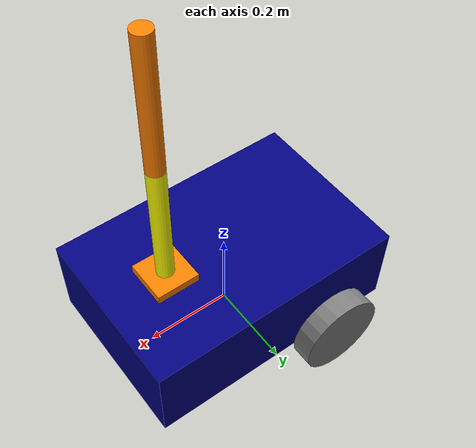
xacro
<?xml version="1.0"?>
<robot name="my_robot" xmlns:xacro="http://www.ros.org/wiki/xacro">

    <xacro:include filename="common_properties.xacro" />
    <xacro:include filename="mobile_base.xacro" />
    <xacro:include filename="mobile_base_gazebo.xacro" />
    <xacro:include filename="arm.xacro" />
    <xacro:include filename="arm_gazebo.xacro" />

    <joint name="mobile_base_arm_joint" type="fixed">
        <parent link="base_link" />
        <child link="arm_base_link" />
        <origin xyz="${base_length / 4.0} 0 ${base_height}" rpy="0 0 0" />
    </joint>

</robot>

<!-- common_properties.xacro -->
<robot xmlns:xacro="http://www.ros.org/wiki/xacro">

    <material name="blue">
        <color rgba="0 0 0.5 1" />
    </material>

    <material name="grey">
        <color rgba="0.5 0.5 0.5 1" />
    </material>

    <material name="orange">
        <color rgba="1 0.5 0 1" />
    </material>

    <material name="yellow">
        <color rgba="1.0 1.0 0 1" />
    </material>

    <xacro:macro name="box_inertia" params="m l w h xyz rpy">
        <inertial>
            <origin xyz="${xyz}" rpy="${rpy}" />
            <mass value="${m}" />
            <inertia ixx="${(m/12) * (h*h + l*l)}" ixy="0" ixz="0"
                     iyy="${(m/12) * (w*w + l*l)}" iyz="0"
                     izz="${(m/12) * (w*w + h*h)}" />
        </inertial>
    </xacro:macro>

    <xacro:macro name="cylinder_inertia" params="m r h xyz rpy">
        <inertial>
            <origin xyz="${xyz}" rpy="${rpy}" />
            <mass value="${m}" />
            <inertia ixx="${(m/12) * (3*r*r + h*h)}" ixy="0" ixz="0"
                     iyy="${(m/12) * (3*r*r + h*h)}" iyz="0"
                     izz="${(m/2) * (r*r)}" />
        </inertial>
    </xacro:macro>

    <xacro:macro name="sphere_inertia" params="m r xyz rpy">
        <inertial>
            <origin xyz="${xyz}" rpy="${rpy}" />
            <mass value="${m}" />
            <inertia ixx="${(2/5) * m * r * r}" ixy="0" ixz="0"
                     iyy="${(2/5) * m * r * r}" iyz="0"
                     izz="${(2/5) * m * r * r}" />
        </inertial>
    </xacro:macro>

</robot>

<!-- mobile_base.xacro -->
<robot xmlns:xacro="http://www.ros.org/wiki/xacro">

    <xacro:property name="base_length" value="0.6" />
    <xacro:property name="base_width" value="0.4" />
    <xacro:property name="base_height" value="0.2" />
    <xacro:property name="wheel_radius" value="0.1" />
    <xacro:property name="wheel_length" value="0.05" />

    <link name="base_footprint" />

    <link name="base_link">
        <visual>
            <geometry>
                <box size="${base_length} ${base_width} ${base_height}" />
            </geometry>
            <origin xyz="0 0 ${base_height / 2.0}" rpy="0 0 0" />
            <material name="blue" />
        </visual>
        <collision>
            <geometry>
                <box size="${base_length} ${base_width} ${base_height}" />
            </geometry>
            <origin xyz="0 0 ${base_height / 2.0}" rpy="0 0 0" />
        </collision>
        <xacro:box_inertia m="5.0" l="${2*base_length}" w="${2*base_width}" h="${2*base_height}"
                           xyz="0 0 ${base_height / 2.0}" rpy="0 0 0" />
    </link>

    <xacro:macro name="wheel_link" params="prefix">
        <link name="${prefix}_wheel_link">
            <visual>
                <geometry>
                    <cylinder radius="${wheel_radius}" length="${wheel_length}" />
                </geometry>
                <origin xyz="0 0 0" rpy="${pi / 2.0} 0 0" />
                <material name="grey" />
            </visual>
            <collision>
                <geometry>
                    <sphere radius="${wheel_radius}" />
                </geometry>
                <origin xyz="0 0 0" rpy="${pi / 2.0} 0 0" />
            </collision>
            <xacro:cylinder_inertia m="1.0" r="${2*wheel_radius}" h="${2*wheel_length}"
                                    xyz="0 0 0" rpy="${pi / 2.0} 0 0" />
        </link>
    </xacro:macro>

    <xacro:wheel_link prefix="right" />
    <xacro:wheel_link prefix="left" />

    <link name="caster_wheel_link">
        <visual>
            <geometry>
                <sphere radius="${wheel_radius / 2.0}" />
            </geometry>
            <origin xyz="0 0 0" rpy="0 0 0" />
            <material name="grey" />
        </visual>
        <collision>
            <geometry>
                <sphere radius="${wheel_radius / 2.0}" />
            </geometry>
            <origin xyz="0 0 0" rpy="0 0 0" />
        </collision>
        <xacro:sphere_inertia m="0.5" r="${2*wheel_radius / 2.0}"
                              xyz="0 0 0" rpy="0 0 0" />
    </link>

    <joint name="base_joint" type="fixed">
        <parent link="base_link" />
        <child link="base_footprint" />
        <origin xyz="0 0 ${wheel_radius}" rpy="0 0 0"/>
    </joint>

    <joint name="base_right_wheel_joint" type="continuous">
        <parent link="base_link" />
        <child link="right_wheel_link" />
        <origin xyz="${-base_length / 4.0} ${-(base_width + wheel_length) / 2.0} 0" rpy="0 0 0" />
        <axis xyz="0 1 0" />
    </joint>

    <joint name="base_left_wheel_joint" type="continuous">
        <parent link="base_link" />
        <child link="left_wheel_link" />
        <origin xyz="${-base_length / 4.0} ${(base_width + wheel_length) / 2.0} 0" rpy="0 0 0" />
        <axis xyz="0 1 0" />
    </joint>

    <joint name="base_caster_wheel_joint" type="fixed">
        <parent link="base_link" />
        <child link="caster_wheel_link" />
        <origin xyz="${base_length / 3.0} 0 ${-wheel_radius / 2.0}" rpy="0 0 0" />
    </joint>

</robot>

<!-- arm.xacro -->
<robot xmlns:xacro="http://www.ros.org/wiki/xacro">

    <xacro:property name="arm_base_length" value="0.1" />
    <xacro:property name="arm_base_width" value="0.1" />
    <xacro:property name="arm_base_height" value="0.02" />
    <xacro:property name="forearm_radius" value="0.02" />
    <xacro:property name="forearm_length" value="0.3" />
    <xacro:property name="hand_radius" value="0.02" />
    <xacro:property name="hand_length" value="0.3" />

    <link name="arm_base_link">
        <visual>
            <geometry>
                <box size="${arm_base_length} ${arm_base_width} ${arm_base_height}" />
            </geometry>
            <origin xyz="0 0 ${arm_base_height / 2.0}" rpy="0 0 0" />
            <material name="orange" />
        </visual>
        <collision>
            <geometry>
                <box size="${arm_base_length} ${arm_base_width} ${arm_base_height}" />
            </geometry>
            <origin xyz="0 0 ${arm_base_height / 2.0}" rpy="0 0 0" />
        </collision>
        <xacro:box_inertia m="0.5" l="${2*arm_base_length}" w="${2*arm_base_width}" h="${2*arm_base_height}"
                           xyz="0 0 ${arm_base_height / 2.0}" rpy="0 0 0" />
    </link>

    <link name="forearm_link">
        <visual>
            <geometry>
                <cylinder radius="${forearm_radius}" length="${forearm_length}" />
            </geometry>
            <origin xyz="0 0 ${forearm_length / 2.0}" rpy="0 0 0" />
            <material name="yellow" />
        </visual>
        <collision>
            <geometry>
                <cylinder radius="${forearm_radius}" length="${forearm_length}" />
            </geometry>
            <origin xyz="0 0 ${forearm_length / 2.0}" rpy="0 0 0" />
        </collision>
        <xacro:cylinder_inertia m="0.3" r="${2*forearm_radius}" h="${2*forearm_length}"
                                xyz="0 0 ${forearm_length / 2.0}" rpy="0 0 0" />
    </link>

    <link name="hand_link">
        <visual>
            <geometry>
                <cylinder radius="${hand_radius}" length="${hand_length}" />
            </geometry>
            <origin xyz="0 0 ${hand_length / 2.0}" rpy="0 0 0" />
            <material name="orange" />
        </visual>
        <collision>
            <geometry>
                <cylinder radius="${hand_radius}" length="${hand_length}" />
            </geometry>
            <origin xyz="0 0 ${hand_length / 2.0}" rpy="0 0 0" />
        </collision>
        <xacro:cylinder_inertia m="0.3" r="${2*hand_radius}" h="${2*hand_length}"
                                xyz="0 0 ${hand_length / 2.0}" rpy="0 0 0" />
    </link>

    <joint name="arm_base_forearm_joint" type="revolute">
        <parent link="arm_base_link" />
        <child link="forearm_link" />
        <origin xyz="0 0 ${arm_base_height}" rpy="0 0 0" />
        <axis xyz="0 1 0" />
        <limit lower="0" upper="${pi/2}" effort="100" velocity="100" />
        <dynamics friction="0.05" damping="0.1" />
    </joint>

    <joint name="forearm_hand_joint" type="revolute">
        <parent link="forearm_link" />
        <child link="hand_link" />
        <origin xyz="0 0 ${forearm_length}" rpy="0 0 0" />
        <axis xyz="0 1 0" />
        <limit lower="0" upper="${pi/2}" effort="100" velocity="100" />
        <dynamics friction="0.05" damping="0.1" />
    </joint>

</robot>
